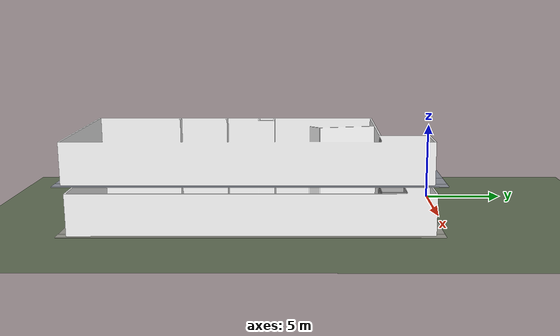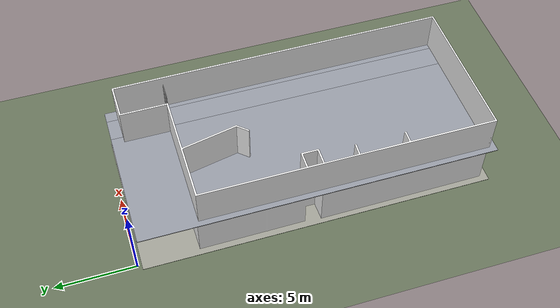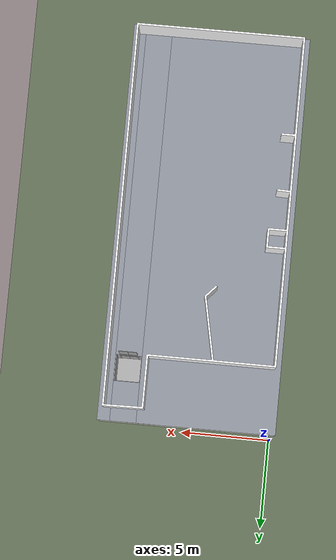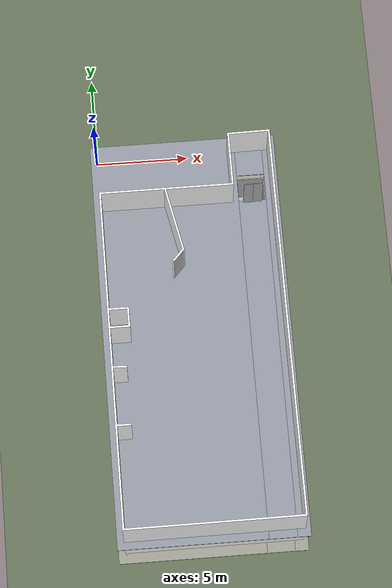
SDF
<sdf version="1.7">
 <world name="sim_world">
  <physics name="10ms" type="ode">
   <max_step_size>0.01</max_step_size>
   <real_time_factor>1.0</real_time_factor>
  </physics>
  <plugin filename="gz-sim-physics-system" name="gz::sim::systems::Physics"/>
  <plugin filename="gz-sim-user-commands-system" name="gz::sim::systems::UserCommands"/>
  <plugin filename="gz-sim-scene-broadcaster-system" name="gz::sim::systems::SceneBroadcaster"/>
  <plugin filename="gz-sim-sensors-system" name="gz::sim::systems::Sensors">
   <render_engine>ogre2</render_engine>
  </plugin>
  <plugin filename="libdoor.so" name="door"/>
  <plugin filename="liblift.so" name="lift"/>
  <scene><ambient>1 1 1</ambient><background>0.8 0.8 0.8</background><grid>false</grid></scene>
  <light type="directional" name="sun">
   <pose>0 0 10 0 0 0</pose>
   <diffuse>1 1 1 1</diffuse>
   <specular>0.2 0.2 0.2 1</specular>
   <attenuation>
    <range>1000</range>
    <constant>0.09</constant>
    <linear>0.001</linear>
    <quadratic>0.001</quadratic>
   </attenuation>
   <direction>-0.5 0.1 -0.9</direction>
  </light>
  <model name="door_L1">
   <pose>2.149957701296504 -8.092567191072499 0.0 0 0 0.0</pose>
   <link name="right">
    <pose>0 0 1.11 0 0 0</pose>
    <visual name="right_visual">
     <geometry><box><size>1.2898348854110404 0.03 2.2</size></box></geometry>
     <material>
      <ambient>0.5 0.25 0 0.6</ambient>
      <diffuse>0.5 0.25 0 0.6</diffuse>
      <pbr><metal><metalness>0.0</metalness></metal></pbr>
     </material>
    </visual>
    <collision name="right_collision">
     <geometry><box><size>1.2898348854110404 0.03 2.2</size></box></geometry>
     <surface><contact><collide_bitmask>0x02</collide_bitmask></contact></surface>
    </collision>
    <inertial>
     <mass>50.0</mass>
     <inertia><ixx>20.17041666666667</ixx><iyy>27.09864179843047</iyy><izz>6.9357251317638</izz></inertia>
    </inertial>
   </link>
   <joint name="right_joint" type="revolute">
    <parent>world</parent>
    <child>right</child>
    <axis><xyz>0 0 -1</xyz><limit><lower>0</lower><upper>1.57</upper></limit></axis>
    <pose>0.6499174427055202 0 0 0 0 0</pose>
   </joint>
   <plugin name="register_component" filename="libregister_component.so">
    <component name="Door">
     <v_max_door>0.5</v_max_door>
     <a_max_door>0.3</a_max_door>
     <a_nom_door>0.15</a_nom_door>
     <dx_min_door>0.01</dx_min_door>
     <f_max_door>500.0</f_max_door>
     <ros_interface>true</ros_interface>
     <door name="door_L1" type="SwingDoor" left_joint_name="empty_joint" right_joint_name="right_joint"/>
    </component>
   </plugin>
  </model>
  <include><name>cafe_L1</name><uri>model://cafe_L1</uri></include>
  <include><name>cafe_L2</name><uri>model://cafe_L2</uri><pose>0 0 3.0 0 0 0</pose></include>
  <model name="ShaftDoor_Lift1_L1_LiftDoor">
   <pose>8.250227299378576 -4.050087226925544 0.0 0 0 3.1416</pose>
   <link name="right_door">
    <pose>0.25 0 1.25 0 0 0</pose>
    <visual name="right_door_visual">
     <geometry><box><size>0.5 0.03 2.5</size></box></geometry>
     <material>
      <ambient>0.5 0.5 0.5 1</ambient>
      <diffuse>0.7 0.7 0.7 1</diffuse>
      <specular>0.6 0.6 0.6 1</specular>
      <emissive>0.1 0.1 0.1 1</emissive>
     </material>
    </visual>
    <collision name="right_door_collision">
     <geometry><box><size>0.5 0.03 2.5</size></box></geometry>
     <surface><contact><collide_bitmask>0x02</collide_bitmask></contact></surface>
    </collision>
   </link>
   <link name="left_door">
    <pose>-0.25 0 1.25 0 0 0</pose>
    <visual name="left_door_visual">
     <geometry><box><size>0.5 0.03 2.5</size></box></geometry>
     <material>
      <ambient>0.5 0.5 0.5 1</ambient>
      <diffuse>0.7 0.7 0.7 1</diffuse>
      <specular>0.6 0.6 0.6 1</specular>
      <emissive>0.1 0.1 0.1 1</emissive>
     </material>
    </visual>
    <collision name="left_door_collision">
     <geometry><box><size>0.5 0.03 2.5</size></box></geometry>
     <surface><contact><collide_bitmask>0x02</collide_bitmask></contact></surface>
    </collision>
   </link>
   <joint name="right_joint" type="prismatic">
    <parent>world</parent>
    <child>right_door</child>
    <axis><xyz>1 0 0</xyz><limit><lower>0</lower><upper>0.5</upper></limit></axis>
   </joint>
   <joint name="left_joint" type="prismatic">
    <parent>world</parent>
    <child>left_door</child>
    <axis><xyz>1 0 0</xyz><limit><lower>-0.5</lower><upper>0</upper></limit></axis>
   </joint>
   <link name="ramp">
    <pose>0 0 -0.025 0 0 0</pose>
    <visual name="ramp_visual">
     <geometry><box><size>1.0 0.1 0.05</size></box></geometry>
     <material>
      <ambient>0.5 0.5 0.5 1</ambient>
      <diffuse>0.7 0.7 0.7 1</diffuse>
      <specular>0.6 0.6 0.6 1</specular>
      <emissive>0.1 0.1 0.1 1</emissive>
     </material>
    </visual>
    <collision name="ramp_collision">
     <geometry><box><size>1.0 0.1 0.05</size></box></geometry>
     <surface><contact><collide_bitmask>0x02</collide_bitmask></contact></surface>
    </collision>
   </link>
   <joint name="ramp_joint" type="fixed"><parent>world</parent><child>ramp</child></joint>
   <plugin name="register_component" filename="libregister_component.so">
    <component name="Door">
     <v_max_door>0.3</v_max_door>
     <a_max_door>0.2</a_max_door>
     <a_nom_door>0.1</a_nom_door>
     <dx_min_door>0.0001</dx_min_door>
     <f_max_door>35.0</f_max_door>
     <door left_joint_name="left_joint" name="ShaftDoor_Lift1_L1_LiftDoor" right_joint_name="right_joint" type="DoubleSlidingDoor"/>
    </component>
   </plugin>
  </model>
  <model name="ShaftDoor_Lift1_L2_LiftDoor">
   <pose>8.250227299378576 -4.050087226925544 3.0 0 0 3.1416</pose>
   <link name="right_door">
    <pose>0.25 0 1.25 0 0 0</pose>
    <visual name="right_door_visual">
     <geometry><box><size>0.5 0.03 2.5</size></box></geometry>
     <material>
      <ambient>0.5 0.5 0.5 1</ambient>
      <diffuse>0.7 0.7 0.7 1</diffuse>
      <specular>0.6 0.6 0.6 1</specular>
      <emissive>0.1 0.1 0.1 1</emissive>
     </material>
    </visual>
    <collision name="right_door_collision">
     <geometry><box><size>0.5 0.03 2.5</size></box></geometry>
     <surface><contact><collide_bitmask>0x02</collide_bitmask></contact></surface>
    </collision>
   </link>
   <link name="left_door">
    <pose>-0.25 0 1.25 0 0 0</pose>
    <visual name="left_door_visual">
     <geometry><box><size>0.5 0.03 2.5</size></box></geometry>
     <material>
      <ambient>0.5 0.5 0.5 1</ambient>
      <diffuse>0.7 0.7 0.7 1</diffuse>
      <specular>0.6 0.6 0.6 1</specular>
      <emissive>0.1 0.1 0.1 1</emissive>
     </material>
    </visual>
    <collision name="left_door_collision">
     <geometry><box><size>0.5 0.03 2.5</size></box></geometry>
     <surface><contact><collide_bitmask>0x02</collide_bitmask></contact></surface>
    </collision>
   </link>
   <joint name="right_joint" type="prismatic">
    <parent>world</parent>
    <child>right_door</child>
    <axis><xyz>1 0 0</xyz><limit><lower>0</lower><upper>0.5</upper></limit></axis>
   </joint>
   <joint name="left_joint" type="prismatic">
    <parent>world</parent>
    <child>left_door</child>
    <axis><xyz>1 0 0</xyz><limit><lower>-0.5</lower><upper>0</upper></limit></axis>
   </joint>
   <link name="ramp">
    <pose>0 0 -0.025 0 0 0</pose>
    <visual name="ramp_visual">
     <geometry><box><size>1.0 0.1 0.05</size></box></geometry>
     <material>
      <ambient>0.5 0.5 0.5 1</ambient>
      <diffuse>0.7 0.7 0.7 1</diffuse>
      <specular>0.6 0.6 0.6 1</specular>
      <emissive>0.1 0.1 0.1 1</emissive>
     </material>
    </visual>
    <collision name="ramp_collision">
     <geometry><box><size>1.0 0.1 0.05</size></box></geometry>
     <surface><contact><collide_bitmask>0x02</collide_bitmask></contact></surface>
    </collision>
   </link>
   <joint name="ramp_joint" type="fixed"><parent>world</parent><child>ramp</child></joint>
   <plugin name="register_component" filename="libregister_component.so">
    <component name="Door">
     <v_max_door>0.3</v_max_door>
     <a_max_door>0.2</a_max_door>
     <a_nom_door>0.1</a_nom_door>
     <dx_min_door>0.0001</dx_min_door>
     <f_max_door>35.0</f_max_door>
     <door left_joint_name="left_joint" name="ShaftDoor_Lift1_L2_LiftDoor" right_joint_name="right_joint" type="DoubleSlidingDoor"/>
    </component>
   </plugin>
  </model>
  <model name="Lift1">
   <link name="platform">
    <inertial><mass>1200</mass><inertia><ixx>225.25</ixx><iyy>225.25</iyy><izz>450.0</izz></inertia></inertial>
    <visual name="floor_visual">
     <pose>0 0 -0.025 0 0 0</pose>
     <geometry><box><size>1.5 1.5 0.05</size></box></geometry>
     <material>
      <ambient>0.5 0.5 0.5 1</ambient>
      <diffuse>0.7 0.7 0.7 1</diffuse>
      <specular>0.6 0.6 0.6 1</specular>
      <emissive>0.1 0.1 0.1 1</emissive>
     </material>
    </visual>
    <collision name="floor_collision">
     <pose>0 0 -0.025 0 0 0</pose>
     <geometry><box><size>1.5 1.5 0.05</size></box></geometry>
     <surface><contact><collide_bitmask>0x01</collide_bitmask></contact></surface>
    </collision>
    <visual name="frontwall1_visual">
     <pose>-0.625 0.725 1.25 0 0 0</pose>
     <geometry><box><size>0.25 0.05 2.5</size></box></geometry>
     <material>
      <ambient>0.5 0.5 0.5 1</ambient>
      <diffuse>0.7 0.7 0.7 1</diffuse>
      <specular>0.6 0.6 0.6 1</specular>
      <emissive>0.1 0.1 0.1 1</emissive>
     </material>
    </visual>
    <collision name="frontwall1_collision">
     <pose>-0.625 0.725 1.25 0 0 0</pose>
     <geometry><box><size>0.25 0.05 2.5</size></box></geometry>
     <surface><contact><collide_bitmask>0x01</collide_bitmask></contact></surface>
    </collision>
    <visual name="frontwall2_visual">
     <pose>0.625 0.725 1.25 0 0 0</pose>
     <geometry><box><size>0.25 0.05 2.5</size></box></geometry>
     <material>
      <ambient>0.5 0.5 0.5 1</ambient>
      <diffuse>0.7 0.7 0.7 1</diffuse>
      <specular>0.6 0.6 0.6 1</specular>
      <emissive>0.1 0.1 0.1 1</emissive>
     </material>
    </visual>
    <collision name="frontwall2_collision">
     <pose>0.625 0.725 1.25 0 0 0</pose>
     <geometry><box><size>0.25 0.05 2.5</size></box></geometry>
     <surface><contact><collide_bitmask>0x01</collide_bitmask></contact></surface>
    </collision>
    <visual name="backwall1_visual">
     <pose>0.0 -0.725 1.25 0 0 0</pose>
     <geometry><box><size>1.5 0.05 2.5</size></box></geometry>
     <material>
      <ambient>0.5 0.5 0.5 1</ambient>
      <diffuse>0.7 0.7 0.7 1</diffuse>
      <specular>0.6 0.6 0.6 1</specular>
      <emissive>0.1 0.1 0.1 1</emissive>
     </material>
    </visual>
    <collision name="backwall1_collision">
     <pose>0.0 -0.725 1.25 0 0 0</pose>
     <geometry><box><size>1.5 0.05 2.5</size></box></geometry>
     <surface><contact><collide_bitmask>0x01</collide_bitmask></contact></surface>
    </collision>
    <visual name="leftwall1_visual">
     <pose>-0.725 0.0 1.25 0 0 1.5707963267948966</pose>
     <geometry><box><size>1.4 0.05 2.5</size></box></geometry>
     <material>
      <ambient>0.5 0.5 0.5 1</ambient>
      <diffuse>0.7 0.7 0.7 1</diffuse>
      <specular>0.6 0.6 0.6 1</specular>
      <emissive>0.1 0.1 0.1 1</emissive>
     </material>
    </visual>
    <collision name="leftwall1_collision">
     <pose>-0.725 0.0 1.25 0 0 1.5707963267948966</pose>
     <geometry><box><size>1.4 0.05 2.5</size></box></geometry>
     <surface><contact><collide_bitmask>0x01</collide_bitmask></contact></surface>
    </collision>
    <visual name="rightwall1_visual">
     <pose>0.725 0.0 1.25 0 0 1.5707963267948966</pose>
     <geometry><box><size>1.4 0.05 2.5</size></box></geometry>
     <material>
      <ambient>0.5 0.5 0.5 1</ambient>
      <diffuse>0.7 0.7 0.7 1</diffuse>
      <specular>0.6 0.6 0.6 1</specular>
      <emissive>0.1 0.1 0.1 1</emissive>
     </material>
    </visual>
    <collision name="rightwall1_collision">
     <pose>0.725 0.0 1.25 0 0 1.5707963267948966</pose>
     <geometry><box><size>1.4 0.05 2.5</size></box></geometry>
     <surface><contact><collide_bitmask>0x01</collide_bitmask></contact></surface>
    </collision>
   </link>
   <joint name="cabin_joint" type="prismatic">
    <parent>world</parent>
    <child>platform</child>
    <axis><xyz>0 0 1</xyz></axis>
   </joint>
   <model name="CabinDoor_Lift1_LiftDoor">
    <pose>0.0 0.725 0 0 0 0.0</pose>
    <link name="right_door">
     <pose>0.25 0 1.25 0 0 0</pose>
     <visual name="right_door_visual">
      <geometry><box><size>0.5 0.03 2.5</size></box></geometry>
      <material>
       <ambient>0.5 0.5 0.5 1</ambient>
       <diffuse>0.7 0.7 0.7 1</diffuse>
       <specular>0.6 0.6 0.6 1</specular>
       <emissive>0.1 0.1 0.1 1</emissive>
      </material>
     </visual>
     <collision name="right_door_collision">
      <geometry><box><size>0.5 0.03 2.5</size></box></geometry>
      <surface><contact><collide_bitmask>0x02</collide_bitmask></contact></surface>
     </collision>
    </link>
    <link name="left_door">
     <pose>-0.25 0 1.25 0 0 0</pose>
     <visual name="left_door_visual">
      <geometry><box><size>0.5 0.03 2.5</size></box></geometry>
      <material>
       <ambient>0.5 0.5 0.5 1</ambient>
       <diffuse>0.7 0.7 0.7 1</diffuse>
       <specular>0.6 0.6 0.6 1</specular>
       <emissive>0.1 0.1 0.1 1</emissive>
      </material>
     </visual>
     <collision name="left_door_collision">
      <geometry><box><size>0.5 0.03 2.5</size></box></geometry>
      <surface><contact><collide_bitmask>0x02</collide_bitmask></contact></surface>
     </collision>
    </link>
    <plugin name="register_component" filename="libregister_component.so">
     <component name="Door">
      <v_max_door>0.3</v_max_door>
      <a_max_door>0.2</a_max_door>
      <a_nom_door>0.1</a_nom_door>
      <dx_min_door>0.0001</dx_min_door>
      <f_max_door>35.0</f_max_door>
      <door left_joint_name="CabinDoor_Lift1_LiftDoor_left_joint" name="CabinDoor_Lift1_LiftDoor" right_joint_name="CabinDoor_Lift1_LiftDoor_right_joint" type="DoubleSlidingDoor"/>
     </component>
    </plugin>
   </model>
   <joint name="CabinDoor_Lift1_LiftDoor_right_joint" type="prismatic">
    <parent>platform</parent>
    <child>CabinDoor_Lift1_LiftDoor::right_door</child>
    <axis><xyz>1 0 0</xyz><limit><lower>0</lower><upper>0.5</upper></limit></axis>
   </joint>
   <joint name="CabinDoor_Lift1_LiftDoor_left_joint" type="prismatic">
    <parent>platform</parent>
    <child>CabinDoor_Lift1_LiftDoor::left_door</child>
    <axis><xyz>1 0 0</xyz><limit><lower>-0.5</lower><upper>0</upper></limit></axis>
   </joint>
   <plugin name="register_component" filename="libregister_component.so">
    <component name="Lift">
     <lift_name>Lift1</lift_name>
     <floor name="L1" elevation="0.0">
      <door_pair cabin_door="CabinDoor_Lift1_LiftDoor" shaft_door="ShaftDoor_Lift1_L1_LiftDoor"/>
     </floor>
     <floor name="L2" elevation="3.0">
      <door_pair cabin_door="CabinDoor_Lift1_LiftDoor" shaft_door="ShaftDoor_Lift1_L2_LiftDoor"/>
     </floor>
     <initial_floor>L1</initial_floor>
     <v_max_cabin>2.0</v_max_cabin>
     <a_max_cabin>1.2</a_max_cabin>
     <a_nom_cabin>1.0</a_nom_cabin>
     <dx_min_cabin>0.001</dx_min_cabin>
     <f_max_cabin>25323.0</f_max_cabin>
     <cabin_joint_name>cabin_joint</cabin_joint_name>
    </component>
   </plugin>
   <pose>8.25022142225041 -3.2500872269471315 0 0 0 3.1416</pose>
  </model>
  <plugin name="register_component" filename="libregister_component.so">
   <component name="Chargers">
    <rmf_charger name="parking1" x="0.5500147614833607" y="-9.000241551545901" z="0.0"/>
    <rmf_charger name="parking2" x="0.5500147614833607" y="-12.500335488258198" z="0.0"/>
   </component>
  </plugin>
  <model name="floor_L1">
   <static>true</static>
   <link name="west">
    <pose>3.6051 -11.5000 -0.0250 0 0 0</pose>
    <collision name="collision"><geometry><box><size>7.8102 22.5000 0.05</size></box></geometry></collision>
    <visual name="visual">
     <geometry><box><size>7.8102 22.5000 0.05</size></box></geometry>
     <material>
      <ambient>0.55 0.55 0.52 1</ambient>
      <diffuse>0.62 0.62 0.58 1</diffuse>
      <specular>0.05 0.05 0.05 1</specular>
     </material>
    </visual>
   </link>
   <link name="east">
    <pose>9.3451 -11.5000 -0.0250 0 0 0</pose>
    <collision name="collision"><geometry><box><size>0.7098 22.5000 0.05</size></box></geometry></collision>
    <visual name="visual">
     <geometry><box><size>0.7098 22.5000 0.05</size></box></geometry>
     <material>
      <ambient>0.55 0.55 0.52 1</ambient>
      <diffuse>0.62 0.62 0.58 1</diffuse>
      <specular>0.05 0.05 0.05 1</specular>
     </material>
    </visual>
   </link>
   <link name="south">
    <pose>8.2502 -13.3700 -0.0250 0 0 0</pose>
    <collision name="collision"><geometry><box><size>1.4800 18.7599 0.05</size></box></geometry></collision>
    <visual name="visual">
     <geometry><box><size>1.4800 18.7599 0.05</size></box></geometry>
     <material>
      <ambient>0.55 0.55 0.52 1</ambient>
      <diffuse>0.62 0.62 0.58 1</diffuse>
      <specular>0.05 0.05 0.05 1</specular>
     </material>
    </visual>
   </link>
   <link name="north">
    <pose>8.2502 -1.3800 -0.0250 0 0 0</pose>
    <collision name="collision"><geometry><box><size>1.4800 2.2601 0.05</size></box></geometry></collision>
    <visual name="visual">
     <geometry><box><size>1.4800 2.2601 0.05</size></box></geometry>
     <material>
      <ambient>0.55 0.55 0.52 1</ambient>
      <diffuse>0.62 0.62 0.58 1</diffuse>
      <specular>0.05 0.05 0.05 1</specular>
     </material>
    </visual>
   </link>
  </model>
  <model name="floor_L2">
   <static>true</static>
   <link name="west">
    <pose>3.6051 -11.5000 2.9750 0 0 0</pose>
    <collision name="collision"><geometry><box><size>7.8102 22.5000 0.05</size></box></geometry></collision>
    <visual name="visual">
     <geometry><box><size>7.8102 22.5000 0.05</size></box></geometry>
     <material>
      <ambient>0.50 0.52 0.55 1</ambient>
      <diffuse>0.58 0.60 0.64 1</diffuse>
      <specular>0.05 0.05 0.05 1</specular>
     </material>
    </visual>
   </link>
   <link name="east">
    <pose>9.3451 -11.5000 2.9750 0 0 0</pose>
    <collision name="collision"><geometry><box><size>0.7098 22.5000 0.05</size></box></geometry></collision>
    <visual name="visual">
     <geometry><box><size>0.7098 22.5000 0.05</size></box></geometry>
     <material>
      <ambient>0.50 0.52 0.55 1</ambient>
      <diffuse>0.58 0.60 0.64 1</diffuse>
      <specular>0.05 0.05 0.05 1</specular>
     </material>
    </visual>
   </link>
   <link name="south">
    <pose>8.2502 -13.3700 2.9750 0 0 0</pose>
    <collision name="collision"><geometry><box><size>1.4800 18.7599 0.05</size></box></geometry></collision>
    <visual name="visual">
     <geometry><box><size>1.4800 18.7599 0.05</size></box></geometry>
     <material>
      <ambient>0.50 0.52 0.55 1</ambient>
      <diffuse>0.58 0.60 0.64 1</diffuse>
      <specular>0.05 0.05 0.05 1</specular>
     </material>
    </visual>
   </link>
   <link name="north">
    <pose>8.2502 -1.3800 2.9750 0 0 0</pose>
    <collision name="collision"><geometry><box><size>1.4800 2.2601 0.05</size></box></geometry></collision>
    <visual name="visual">
     <geometry><box><size>1.4800 2.2601 0.05</size></box></geometry>
     <material>
      <ambient>0.50 0.52 0.55 1</ambient>
      <diffuse>0.58 0.60 0.64 1</diffuse>
      <specular>0.05 0.05 0.05 1</specular>
     </material>
    </visual>
   </link>
  </model>
  <model name="ground_plane">
   <static>true</static>
   <link name="link">
    <collision name="collision">
     <geometry><plane><normal>0 0 1</normal><size>80 80</size></plane></geometry>
    </collision>
    <visual name="visual">
     <geometry><plane><normal>0 0 1</normal><size>80 80</size></plane></geometry>
     <material>
      <ambient>0.35 0.40 0.32 1</ambient>
      <diffuse>0.40 0.45 0.35 1</diffuse>
      <specular>0.05 0.05 0.05 1</specular>
     </material>
    </visual>
   </link>
  </model>
 </world>
</sdf>

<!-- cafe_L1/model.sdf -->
<sdf version="1.7">
  <model name="cafe_L1">
    <static>true</static>
    <link name="wall_1">
      <visual name="wall_1">
        <geometry>
          <mesh>
            <uri>model://cafe_L1/meshes/wall_1.obj</uri>
          </mesh>
        </geometry>
        <transparency>0.0</transparency>
        <material>
          <diffuse>1.0 1.0 1.0 1</diffuse>
          <specular>0.1 0.1 0.1</specular>
          <pbr>
            <metal>
              <metalness>0.0</metalness>
              <albedo_map>model://cafe_L1/meshes/default.png</albedo_map>
            </metal>
          </pbr>
          <script>
            <uri>model://cafe_L1/meshes/</uri>
            <name>wall_1_Diffuse</name>
          </script>
        </material>
      </visual>
      <collision name="collision">
        <geometry>
          <mesh>
            <uri>model://cafe_L1/meshes/wall_1.obj</uri>
          </mesh>
        </geometry>
        <surface>
          <contact>
            <collide_bitmask>0x01</collide_bitmask>
          </contact>
        </surface>
      </collision>
      <pose>0.021616306162699606 -22.27263901134223 0 0 0 0</pose>
    </link>
  </model>
</sdf>

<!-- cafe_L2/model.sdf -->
<sdf version="1.7">
  <model name="cafe_L2">
    <static>true</static>
    <link name="wall_1">
      <visual name="wall_1">
        <geometry>
          <mesh>
            <uri>model://cafe_L2/meshes/wall_1.obj</uri>
          </mesh>
        </geometry>
        <transparency>0.0</transparency>
        <material>
          <diffuse>1.0 1.0 1.0 1</diffuse>
          <specular>0.1 0.1 0.1</specular>
          <pbr>
            <metal>
              <metalness>0.0</metalness>
              <albedo_map>model://cafe_L2/meshes/default.png</albedo_map>
            </metal>
          </pbr>
          <script>
            <uri>model://cafe_L2/meshes/</uri>
            <name>wall_1_Diffuse</name>
          </script>
        </material>
      </visual>
      <collision name="collision">
        <geometry>
          <mesh>
            <uri>model://cafe_L2/meshes/wall_1.obj</uri>
          </mesh>
        </geometry>
        <surface>
          <contact>
            <collide_bitmask>0x01</collide_bitmask>
          </contact>
        </surface>
      </collision>
      <pose>0.05336730421420288 -22.344033804859492 0 0 0 0</pose>
    </link>
  </model>
</sdf>
